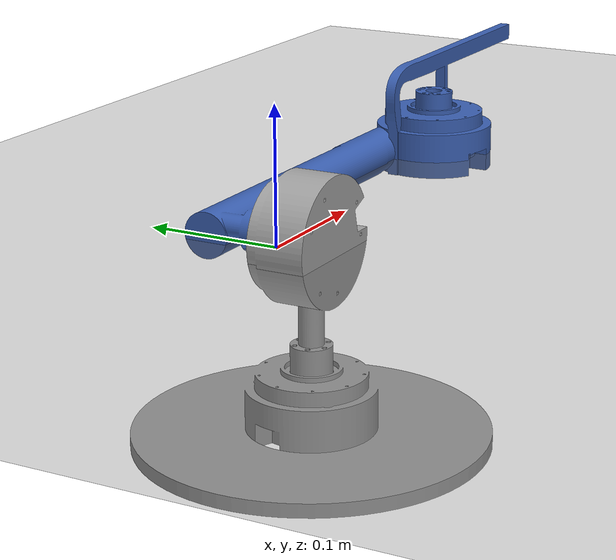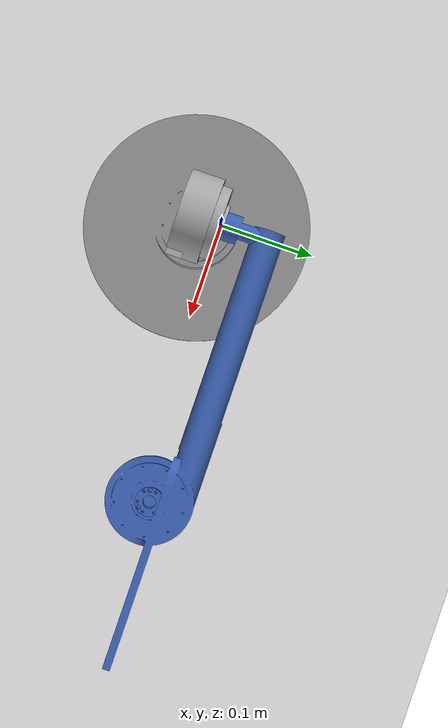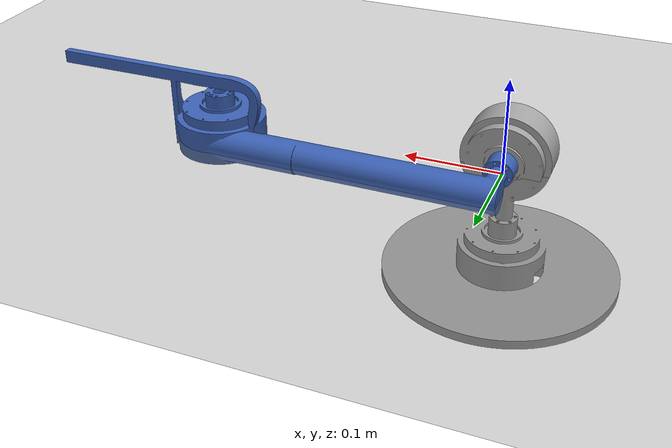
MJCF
<mujoco model="assembly">
  <option iterations="50" timestep="0.001" solver="PGS" gravity="0 0 -9.81" />

  <compiler angle="radian" meshdir="meshes" eulerseq="zyx" autolimits="true" />

  <default>
    <joint limited="true" damping="0.01" armature="0.01" frictionloss="0.01" />
    <geom condim="4" contype="1" conaffinity="15" friction="0.9 0.2 0.2" solref="0.001 2" />
    <motor ctrllimited="true" />
    <equality solref="0.001 2" />
    <default class="visualgeom">
      <geom material="visualgeom" condim="1" contype="0" conaffinity="0" />
    </default>
  </default>

  <asset>
    <mesh name="RS_01_Rotor" file="RS_01_Rotor.stl" />
    <mesh name="RS_01_Stator" file="RS_01_Stator.stl" />
    <mesh name="RS_01_Stator_2" file="RS_01_Stator_2.stl" />
    <mesh name="RS_01_Rotor_2" file="RS_01_Rotor_2.stl" />
    <texture name="texplane" type="2d" builtin="checker" rgb1=".0 .0 .0" rgb2=".8 .8 .8" width="100" height="100" />
    <material name="matplane" reflectance="0." texture="texplane" texrepeat="1 1" texuniform="true" />
    <material name="visualgeom" rgba="0.5 0.9 0.2 1" />
  </asset>

  <worldbody>
    <light directional="true" diffuse="0.4 0.4 0.4" specular="0.1 0.1 0.1" pos="0 0 5.0" dir="0 0 -1" castshadow="false" />
    <light directional="true" diffuse="0.6 0.6 0.6" specular="0.2 0.2 0.2" pos="0 0 4" dir="0 0 -1" />
    <geom name="ground" type="plane" pos="0 0 0" size="100 100 0.001" quat="1 0 0 0" material="matplane" condim="3" conaffinity="15" />
    <camera name="fixed" pos="0 -3.0 0.5" xyaxes="1 0 0 0 0 1" />
    <camera name="track" mode="trackcom" pos="0 -3.0 0.5" xyaxes="1 0 0 0 0 1" />
    <body name="root" pos="0 0 0.01" quat="1 0 0 0">
      <freejoint name="root" />
      <site name="imu" size="0.01" pos="0 0 0" />
      <geom type="mesh" rgba="0.231373 0.380392 0.705882 1" mesh="RS_01_Rotor" contype="1" conaffinity="0" density="0" group="1" class="visualgeom" />
      <geom type="mesh" rgba="0.231373 0.380392 0.705882 1" mesh="RS_01_Rotor" />
      <body name="RS_01_Stator" pos="7.93725e-05 0 -7.64886e-05" quat="0.707107 0.707107 0 0">
        <inertial pos="-8.92189e-05 -0.0088058 0.0199571" quat="0.515906 0.487995 -0.480535 0.514576" mass="1.41188" diaginertia="0.00216129 0.00178382 0.000732847" />
        <joint name="Revolute-rob2" pos="0 0 0" axis="0 0 -1" actuatorfrcrange="-80 80" />
        <geom type="mesh" rgba="0.647059 0.647059 0.647059 1" mesh="RS_01_Stator" contype="1" conaffinity="0" density="0" group="1" class="visualgeom" />
        <geom type="mesh" rgba="0.647059 0.647059 0.647059 1" mesh="RS_01_Stator" />
        <body name="RS_01_Stator_2" pos="0.000212977 -0.0951268 0.026898" quat="-1.64085e-08 1.64085e-08 -0.707107 -0.707107">
          <inertial pos="2.16266e-05 7.48151e-05 -0.0271509" quat="0.538321 0.458928 -0.537794 0.458665" mass="1.82981" diaginertia="0.00600422 0.00344784 0.00343333" />
          <joint name="Revolute-rob1" pos="0 0 0" axis="0 0 -1" actuatorfrcrange="-80 80" />
          <geom type="mesh" rgba="0.647059 0.647059 0.647059 1" mesh="RS_01_Stator_2" contype="1" conaffinity="0" density="0" group="1" class="visualgeom" />
          <geom type="mesh" rgba="0.647059 0.647059 0.647059 1" mesh="RS_01_Stator_2" />
        </body>
      </body>
      <body name="RS_01_Rotor_2" pos="0.294258 0.0228857 0.0219341" quat="2.67949e-08 -1 -3.58979e-09 0">
        <inertial pos="-7.93725e-05 7.64886e-05 0" mass="0.119133" diaginertia="1.69732e-05 1.69673e-05 1.54699e-05" />
        <joint name="Revolute-rob3" pos="0 0 0" axis="0 0 1" actuatorfrcrange="-80 80" />
        <geom type="mesh" rgba="0.231373 0.380392 0.705882 1" mesh="RS_01_Rotor_2" contype="1" conaffinity="0" density="0" group="1" class="visualgeom" />
        <geom type="mesh" rgba="0.231373 0.380392 0.705882 1" mesh="RS_01_Rotor_2" />
      </body>
    </body>
  </worldbody>

  <actuator>
    <motor name="Revolute-rob2" joint="Revolute-rob2" ctrllimited="true" ctrlrange="-80 80" gear="1" />
    <motor name="Revolute-rob1" joint="Revolute-rob1" ctrllimited="true" ctrlrange="-80 80" gear="1" />
    <motor name="Revolute-rob3" joint="Revolute-rob3" ctrllimited="true" ctrlrange="-80 80" gear="1" />
  </actuator>

  <sensor>
    <actuatorpos name="Revolute-rob2_p" actuator="Revolute-rob2" />
    <actuatorvel name="Revolute-rob2_v" actuator="Revolute-rob2" />
    <actuatorfrc name="Revolute-rob2_f" actuator="Revolute-rob2" noise="0.001" />
    <actuatorpos name="Revolute-rob1_p" actuator="Revolute-rob1" />
    <actuatorvel name="Revolute-rob1_v" actuator="Revolute-rob1" />
    <actuatorfrc name="Revolute-rob1_f" actuator="Revolute-rob1" noise="0.001" />
    <actuatorpos name="Revolute-rob3_p" actuator="Revolute-rob3" />
    <actuatorvel name="Revolute-rob3_v" actuator="Revolute-rob3" />
    <actuatorfrc name="Revolute-rob3_f" actuator="Revolute-rob3" noise="0.001" />
    <framequat name="orientation" objtype="site" noise="0.001" objname="imu" />
    <gyro name="angular-velocity" site="imu" noise="0.005" cutoff="34.9" />
  </sensor>
</mujoco>
